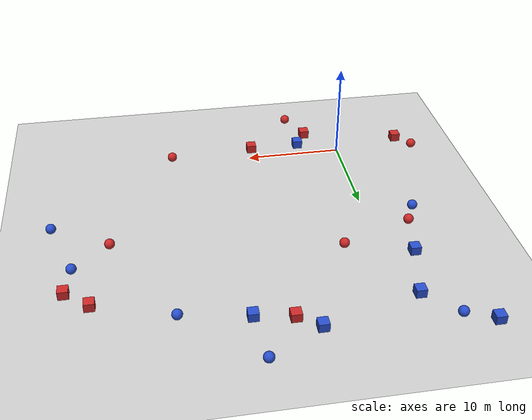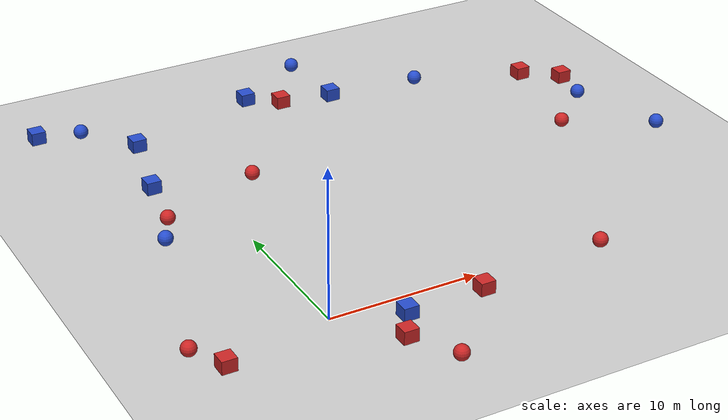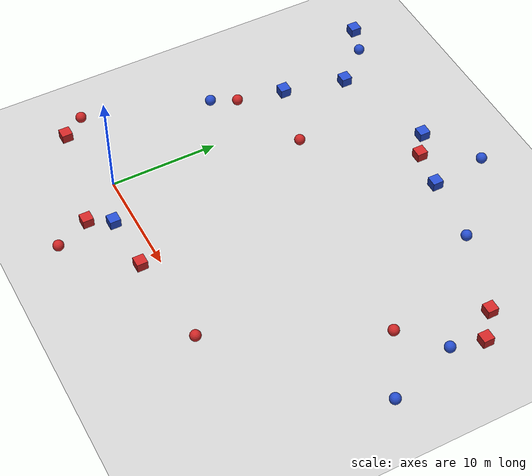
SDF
<sdf version="1.6">
 <world name="default">
  <light name="sun" type="directional">
   <pose>0 0 10 0 -0 0</pose>
   <diffuse>0.8 0.8 0.8 1</diffuse>
   <specular>0.1 0.1 0.1 1</specular>
   <attenuation>
    <range>1000</range>
    <constant>0.9</constant>
    <linear>0.01</linear>
    <quadratic>0.001</quadratic>
   </attenuation>
   <direction>-0.5 0.5 -1</direction>
  </light>
  <model name="ground_plane">
   <static>1</static>
   <link name="link">
    <collision name="collision">
     <geometry><plane><normal>0 0 1</normal><size>100 100</size></plane></geometry>
     <surface><friction><ode><mu>100</mu><mu2>50</mu2></ode></friction></surface>
    </collision>
    <visual name="visual">
     <cast_shadows>0</cast_shadows>
     <geometry><plane><normal>0 0 1</normal><size>100 100</size></plane></geometry>
     <material>
      <script><uri>file://media/materials/scripts/gazebo.material</uri><name>Gazebo/Grey</name></script>
     </material>
    </visual>
   </link>
  </model>
  <model name="unit_box_red_6">
   <pose>27.4671219972 21.7358503552 0.329741 0 -0 0</pose>
   <link name="link">
    <inertial>
     <mass>1</mass>
     <inertia>
      <ixx>0.166667</ixx>
      <ixy>0</ixy>
      <ixz>0</ixz>
      <iyy>0.166667</iyy>
      <iyz>0</iyz>
      <izz>0.166667</izz>
     </inertia>
    </inertial>
    <collision name="collision"><geometry><box><size>1 1 0.999999</size></box></geometry></collision>
    <visual name="visual">
     <geometry><box><size>1 1 0.999999</size></box></geometry>
     <material>
      <script><name>Gazebo/Red</name><uri>file://media/materials/scripts/gazebo.material</uri></script>
     </material>
    </visual>
   </link>
  </model>
  <model name="unit_box_red_5">
   <pose>29.7734016879 19.7922688688 0.329741 0 -0 0</pose>
   <link name="link">
    <inertial>
     <mass>1</mass>
     <inertia>
      <ixx>0.166667</ixx>
      <ixy>0</ixy>
      <ixz>0</ixz>
      <iyy>0.166667</iyy>
      <iyz>0</iyz>
      <izz>0.166667</izz>
     </inertia>
    </inertial>
    <collision name="collision"><geometry><box><size>1 1 0.999999</size></box></geometry></collision>
    <visual name="visual">
     <geometry><box><size>1 1 0.999999</size></box></geometry>
     <material>
      <script><name>Gazebo/Red</name><uri>file://media/materials/scripts/gazebo.material</uri></script>
     </material>
    </visual>
   </link>
  </model>
  <model name="unit_box_red_4">
   <pose>3.03407262694 -3.82501341827 0.329741 0 -0 0</pose>
   <link name="link">
    <inertial>
     <mass>1</mass>
     <inertia>
      <ixx>0.166667</ixx>
      <ixy>0</ixy>
      <ixz>0</ixz>
      <iyy>0.166667</iyy>
      <iyz>0</iyz>
      <izz>0.166667</izz>
     </inertia>
    </inertial>
    <collision name="collision"><geometry><box><size>1 1 0.999999</size></box></geometry></collision>
    <visual name="visual">
     <geometry><box><size>1 1 0.999999</size></box></geometry>
     <material>
      <script><name>Gazebo/Red</name><uri>file://media/materials/scripts/gazebo.material</uri></script>
     </material>
    </visual>
   </link>
  </model>
  <model name="unit_box_red_3">
   <pose>9.55760636948 -1.6624782139 0.329741 0 -0 0</pose>
   <link name="link">
    <inertial>
     <mass>1</mass>
     <inertia>
      <ixx>0.166667</ixx>
      <ixy>0</ixy>
      <ixz>0</ixz>
      <iyy>0.166667</iyy>
      <iyz>0</iyz>
      <izz>0.166667</izz>
     </inertia>
    </inertial>
    <collision name="collision"><geometry><box><size>1 1 0.999999</size></box></geometry></collision>
    <visual name="visual">
     <geometry><box><size>1 1 0.999999</size></box></geometry>
     <material>
      <script><name>Gazebo/Red</name><uri>file://media/materials/scripts/gazebo.material</uri></script>
     </material>
    </visual>
   </link>
  </model>
  <model name="unit_box_red_2">
   <pose>-7.24410950979 -1.52239089637 0.329741 0 -0 0</pose>
   <link name="link">
    <inertial>
     <mass>1</mass>
     <inertia>
      <ixx>0.166667</ixx>
      <ixy>0</ixy>
      <ixz>0</ixz>
      <iyy>0.166667</iyy>
      <iyz>0</iyz>
      <izz>0.166667</izz>
     </inertia>
    </inertial>
    <collision name="collision"><geometry><box><size>1 1 0.999999</size></box></geometry></collision>
    <visual name="visual">
     <geometry><box><size>1 1 0.999999</size></box></geometry>
     <material>
      <script><name>Gazebo/Red</name><uri>file://media/materials/scripts/gazebo.material</uri></script>
     </material>
    </visual>
   </link>
  </model>
  <model name="unit_box_red_1">
   <pose>9.88962671161 25.8903607762 0.329741 0 -0 0</pose>
   <link name="link">
    <inertial>
     <mass>1</mass>
     <inertia>
      <ixx>0.166667</ixx>
      <ixy>0</ixy>
      <ixz>0</ixz>
      <iyy>0.166667</iyy>
      <iyz>0</iyz>
      <izz>0.166667</izz>
     </inertia>
    </inertial>
    <collision name="collision"><geometry><box><size>1 1 0.999999</size></box></geometry></collision>
    <visual name="visual">
     <geometry><box><size>1 1 0.999999</size></box></geometry>
     <material>
      <script><name>Gazebo/Red</name><uri>file://media/materials/scripts/gazebo.material</uri></script>
     </material>
    </visual>
   </link>
  </model>
  <model name="unit_sphere_red_6">
   <pose>-8.58833398352 0.536488108992 0.5 0 -0 0</pose>
   <link name="link">
    <inertial>
     <mass>1</mass>
     <inertia><ixx>0.1</ixx><ixy>0</ixy><ixz>0</ixz><iyy>0.1</iyy><iyz>0</iyz><izz>0.1</izz></inertia>
    </inertial>
    <collision name="collision"><geometry><sphere><radius>0.5</radius></sphere></geometry></collision>
    <visual name="visual">
     <geometry><sphere><radius>0.5</radius></sphere></geometry>
     <material>
      <script><name>Gazebo/Red</name><uri>file://media/materials/scripts/gazebo.material</uri></script>
     </material>
    </visual>
   </link>
  </model>
  <model name="unit_sphere_red_5">
   <pose>4.63209298114 -7.09202456516 0.5 0 -0 0</pose>
   <link name="link">
    <inertial>
     <mass>1</mass>
     <inertia><ixx>0.1</ixx><ixy>0</ixy><ixz>0</ixz><iyy>0.1</iyy><iyz>0</iyz><izz>0.1</izz></inertia>
    </inertial>
    <collision name="collision"><geometry><sphere><radius>0.5</radius></sphere></geometry></collision>
    <visual name="visual">
     <geometry><sphere><radius>0.5</radius></sphere></geometry>
     <material>
      <script><name>Gazebo/Red</name><uri>file://media/materials/scripts/gazebo.material</uri></script>
     </material>
    </visual>
   </link>
  </model>
  <model name="unit_sphere_red_4">
   <pose>3.36623294265 17.0674130482 0.5 0 -0 0</pose>
   <link name="link">
    <inertial>
     <mass>1</mass>
     <inertia><ixx>0.1</ixx><ixy>0</ixy><ixz>0</ixz><iyy>0.1</iyy><iyz>0</iyz><izz>0.1</izz></inertia>
    </inertial>
    <collision name="collision"><geometry><sphere><radius>0.5</radius></sphere></geometry></collision>
    <visual name="visual">
     <geometry><sphere><radius>0.5</radius></sphere></geometry>
     <material>
      <script><name>Gazebo/Red</name><uri>file://media/materials/scripts/gazebo.material</uri></script>
     </material>
    </visual>
   </link>
  </model>
  <model name="unit_sphere_red_3">
   <pose>18.5385544532 -0.846029697515 0.5 0 -0 0</pose>
   <link name="link">
    <inertial>
     <mass>1</mass>
     <inertia><ixx>0.1</ixx><ixy>0</ixy><ixz>0</ixz><iyy>0.1</iyy><iyz>0</iyz><izz>0.1</izz></inertia>
    </inertial>
    <collision name="collision"><geometry><sphere><radius>0.5</radius></sphere></geometry></collision>
    <visual name="visual">
     <geometry><sphere><radius>0.5</radius></sphere></geometry>
     <material>
      <script><name>Gazebo/Red</name><uri>file://media/materials/scripts/gazebo.material</uri></script>
     </material>
    </visual>
   </link>
  </model>
  <model name="unit_sphere_red_2">
   <pose>-3.85216226265 14.3742236183 0.5 0 -0 0</pose>
   <link name="link">
    <inertial>
     <mass>1</mass>
     <inertia><ixx>0.1</ixx><ixy>0</ixy><ixz>0</ixz><iyy>0.1</iyy><iyz>0</iyz><izz>0.1</izz></inertia>
    </inertial>
    <collision name="collision"><geometry><sphere><radius>0.5</radius></sphere></geometry></collision>
    <visual name="visual">
     <geometry><sphere><radius>0.5</radius></sphere></geometry>
     <material>
      <script><name>Gazebo/Red</name><uri>file://media/materials/scripts/gazebo.material</uri></script>
     </material>
    </visual>
   </link>
  </model>
  <model name="unit_sphere_red_1">
   <pose>25.59776828 13.6187385913 0.5 0 -0 0</pose>
   <link name="link">
    <inertial>
     <mass>1</mass>
     <inertia><ixx>0.1</ixx><ixy>0</ixy><ixz>0</ixz><iyy>0.1</iyy><iyz>0</iyz><izz>0.1</izz></inertia>
    </inertial>
    <collision name="collision"><geometry><sphere><radius>0.5</radius></sphere></geometry></collision>
    <visual name="visual">
     <geometry><sphere><radius>0.5</radius></sphere></geometry>
     <material>
      <script><name>Gazebo/Red</name><uri>file://media/materials/scripts/gazebo.material</uri></script>
     </material>
    </visual>
   </link>
  </model>
  <model name="unit_box_blue_6">
   <pose>7.84431575869 27.4257921481 0.329741 0 -0 0</pose>
   <link name="link">
    <inertial>
     <mass>1</mass>
     <inertia>
      <ixx>0.166667</ixx>
      <ixy>0</ixy>
      <ixz>0</ixz>
      <iyy>0.166667</iyy>
      <iyz>0</iyz>
      <izz>0.166667</izz>
     </inertia>
    </inertial>
    <collision name="collision"><geometry><box><size>1 1 0.999999</size></box></geometry></collision>
    <visual name="visual">
     <geometry><box><size>1 1 0.999999</size></box></geometry>
     <material>
      <script><name>Gazebo/Blue</name><uri>file://media/materials/scripts/gazebo.material</uri></script>
     </material>
    </visual>
   </link>
  </model>
  <model name="unit_box_blue_5">
   <pose>4.22697037974 -1.79547708743 0.329741 0 -0 0</pose>
   <link name="link">
    <inertial>
     <mass>1</mass>
     <inertia>
      <ixx>0.166667</ixx>
      <ixy>0</ixy>
      <ixz>0</ixz>
      <iyy>0.166667</iyy>
      <iyz>0</iyz>
      <izz>0.166667</izz>
     </inertia>
    </inertial>
    <collision name="collision"><geometry><box><size>1 1 0.999999</size></box></geometry></collision>
    <visual name="visual">
     <geometry><box><size>1 1 0.999999</size></box></geometry>
     <material>
      <script><name>Gazebo/Blue</name><uri>file://media/materials/scripts/gazebo.material</uri></script>
     </material>
    </visual>
   </link>
  </model>
  <model name="unit_box_blue_4">
   <pose>-3.04747000961 18.8500355066 0.329741 0 -0 0</pose>
   <link name="link">
    <inertial>
     <mass>1</mass>
     <inertia>
      <ixx>0.166667</ixx>
      <ixy>0</ixy>
      <ixz>0</ixz>
      <iyy>0.166667</iyy>
      <iyz>0</iyz>
      <izz>0.166667</izz>
     </inertia>
    </inertial>
    <collision name="collision"><geometry><box><size>1 1 0.999999</size></box></geometry></collision>
    <visual name="visual">
     <geometry><box><size>1 1 0.999999</size></box></geometry>
     <material>
      <script><name>Gazebo/Blue</name><uri>file://media/materials/scripts/gazebo.material</uri></script>
     </material>
    </visual>
   </link>
  </model>
  <model name="unit_box_blue_3">
   <pose>13.5226016301 25.2549537913 0.329741 0 -0 0</pose>
   <link name="link">
    <inertial>
     <mass>1</mass>
     <inertia>
      <ixx>0.166667</ixx>
      <ixy>0</ixy>
      <ixz>0</ixz>
      <iyy>0.166667</iyy>
      <iyz>0</iyz>
      <izz>0.166667</izz>
     </inertia>
    </inertial>
    <collision name="collision"><geometry><box><size>1 1 0.999999</size></box></geometry></collision>
    <visual name="visual">
     <geometry><box><size>1 1 0.999999</size></box></geometry>
     <material>
      <script><name>Gazebo/Blue</name><uri>file://media/materials/scripts/gazebo.material</uri></script>
     </material>
    </visual>
   </link>
  </model>
  <model name="unit_box_blue_2">
   <pose>-1.64812737111 24.6607622478 0.329741 0 -0 0</pose>
   <link name="link">
    <inertial>
     <mass>1</mass>
     <inertia>
      <ixx>0.166667</ixx>
      <ixy>0</ixy>
      <ixz>0</ixz>
      <iyy>0.166667</iyy>
      <iyz>0</iyz>
      <izz>0.166667</izz>
     </inertia>
    </inertial>
    <collision name="collision"><geometry><box><size>1 1 0.999999</size></box></geometry></collision>
    <visual name="visual">
     <geometry><box><size>1 1 0.999999</size></box></geometry>
     <material>
      <script><name>Gazebo/Blue</name><uri>file://media/materials/scripts/gazebo.material</uri></script>
     </material>
    </visual>
   </link>
  </model>
  <model name="unit_box_blue_1">
   <pose>-7.28754721439 28.9457575914 0.329741 0 -0 0</pose>
   <link name="link">
    <inertial>
     <mass>1</mass>
     <inertia>
      <ixx>0.166667</ixx>
      <ixy>0</ixy>
      <ixz>0</ixz>
      <iyy>0.166667</iyy>
      <iyz>0</iyz>
      <izz>0.166667</izz>
     </inertia>
    </inertial>
    <collision name="collision"><geometry><box><size>1 1 0.999999</size></box></geometry></collision>
    <visual name="visual">
     <geometry><box><size>1 1 0.999999</size></box></geometry>
     <material>
      <script><name>Gazebo/Blue</name><uri>file://media/materials/scripts/gazebo.material</uri></script>
     </material>
    </visual>
   </link>
  </model>
  <model name="unit_sphere_blue_6">
   <pose>31.2619486462 10.331223958 0.5 0 -0 0</pose>
   <link name="link">
    <inertial>
     <mass>1</mass>
     <inertia><ixx>0.1</ixx><ixy>0</ixy><ixz>0</ixz><iyy>0.1</iyy><iyz>0</iyz><izz>0.1</izz></inertia>
    </inertial>
    <collision name="collision"><geometry><sphere><radius>0.5</radius></sphere></geometry></collision>
    <visual name="visual">
     <geometry><sphere><radius>0.5</radius></sphere></geometry>
     <material>
      <script><name>Gazebo/Blue</name><uri>file://media/materials/scripts/gazebo.material</uri></script>
     </material>
    </visual>
   </link>
  </model>
  <model name="unit_sphere_blue_5">
   <pose>-4.97983298533 12.1096938451 0.5 0 -0 0</pose>
   <link name="link">
    <inertial>
     <mass>1</mass>
     <inertia><ixx>0.1</ixx><ixy>0</ixy><ixz>0</ixz><iyy>0.1</iyy><iyz>0</iyz><izz>0.1</izz></inertia>
    </inertial>
    <collision name="collision"><geometry><sphere><radius>0.5</radius></sphere></geometry></collision>
    <visual name="visual">
     <geometry><sphere><radius>0.5</radius></sphere></geometry>
     <material>
      <script><name>Gazebo/Blue</name><uri>file://media/materials/scripts/gazebo.material</uri></script>
     </material>
    </visual>
   </link>
  </model>
  <model name="unit_sphere_blue_4">
   <pose>13.0276805181 30.4497082355 0.5 0 -0 0</pose>
   <link name="link">
    <inertial>
     <mass>1</mass>
     <inertia><ixx>0.1</ixx><ixy>0</ixy><ixz>0</ixz><iyy>0.1</iyy><iyz>0</iyz><izz>0.1</izz></inertia>
    </inertial>
    <collision name="collision"><geometry><sphere><radius>0.5</radius></sphere></geometry></collision>
    <visual name="visual">
     <geometry><sphere><radius>0.5</radius></sphere></geometry>
     <material>
      <script><name>Gazebo/Blue</name><uri>file://media/materials/scripts/gazebo.material</uri></script>
     </material>
    </visual>
   </link>
  </model>
  <model name="unit_sphere_blue_3">
   <pose>-4.46721643922 27.8981015049 0.5 0 -0 0</pose>
   <link name="link">
    <inertial>
     <mass>1</mass>
     <inertia><ixx>0.1</ixx><ixy>0</ixy><ixz>0</ixz><iyy>0.1</iyy><iyz>0</iyz><izz>0.1</izz></inertia>
    </inertial>
    <collision name="collision"><geometry><sphere><radius>0.5</radius></sphere></geometry></collision>
    <visual name="visual">
     <geometry><sphere><radius>0.5</radius></sphere></geometry>
     <material>
      <script><name>Gazebo/Blue</name><uri>file://media/materials/scripts/gazebo.material</uri></script>
     </material>
    </visual>
   </link>
  </model>
  <model name="unit_sphere_blue_2">
   <pose>29.1345707821 16.7688908186 0.5 0 -0 0</pose>
   <link name="link">
    <inertial>
     <mass>1</mass>
     <inertia><ixx>0.1</ixx><ixy>0</ixy><ixz>0</ixz><iyy>0.1</iyy><iyz>0</iyz><izz>0.1</izz></inertia>
    </inertial>
    <collision name="collision"><geometry><sphere><radius>0.5</radius></sphere></geometry></collision>
    <visual name="visual">
     <geometry><sphere><radius>0.5</radius></sphere></geometry>
     <material>
      <script><name>Gazebo/Blue</name><uri>file://media/materials/scripts/gazebo.material</uri></script>
     </material>
    </visual>
   </link>
  </model>
  <model name="unit_sphere_blue_1">
   <pose>19.9739541012 24.3124912736 0.5 0 -0 0</pose>
   <link name="link">
    <inertial>
     <mass>1</mass>
     <inertia><ixx>0.1</ixx><ixy>0</ixy><ixz>0</ixz><iyy>0.1</iyy><iyz>0</iyz><izz>0.1</izz></inertia>
    </inertial>
    <collision name="collision"><geometry><sphere><radius>0.5</radius></sphere></geometry></collision>
    <visual name="visual">
     <geometry><sphere><radius>0.5</radius></sphere></geometry>
     <material>
      <script><name>Gazebo/Blue</name><uri>file://media/materials/scripts/gazebo.material</uri></script>
     </material>
    </visual>
   </link>
  </model>
  <gravity>0 0 -9.8</gravity>
  <magnetic_field>6e-06 2.3e-05 -4.2e-05</magnetic_field>
  <atmosphere type="adiabatic"/>
  <physics default="0" name="default_physics" type="ode">
   <max_step_size>0.001</max_step_size>
   <real_time_factor>1</real_time_factor>
   <real_time_update_rate>1000</real_time_update_rate>
  </physics>
  <scene><ambient>0.4 0.4 0.4 1</ambient><background>0.7 0.7 0.7 1</background><shadows>1</shadows></scene>
  <spherical_coordinates>
   <surface_model>EARTH_WGS84</surface_model>
   <latitude_deg>0</latitude_deg>
   <longitude_deg>0</longitude_deg>
   <elevation>0</elevation>
   <heading_deg>0</heading_deg>
  </spherical_coordinates>
 </world>
</sdf>
